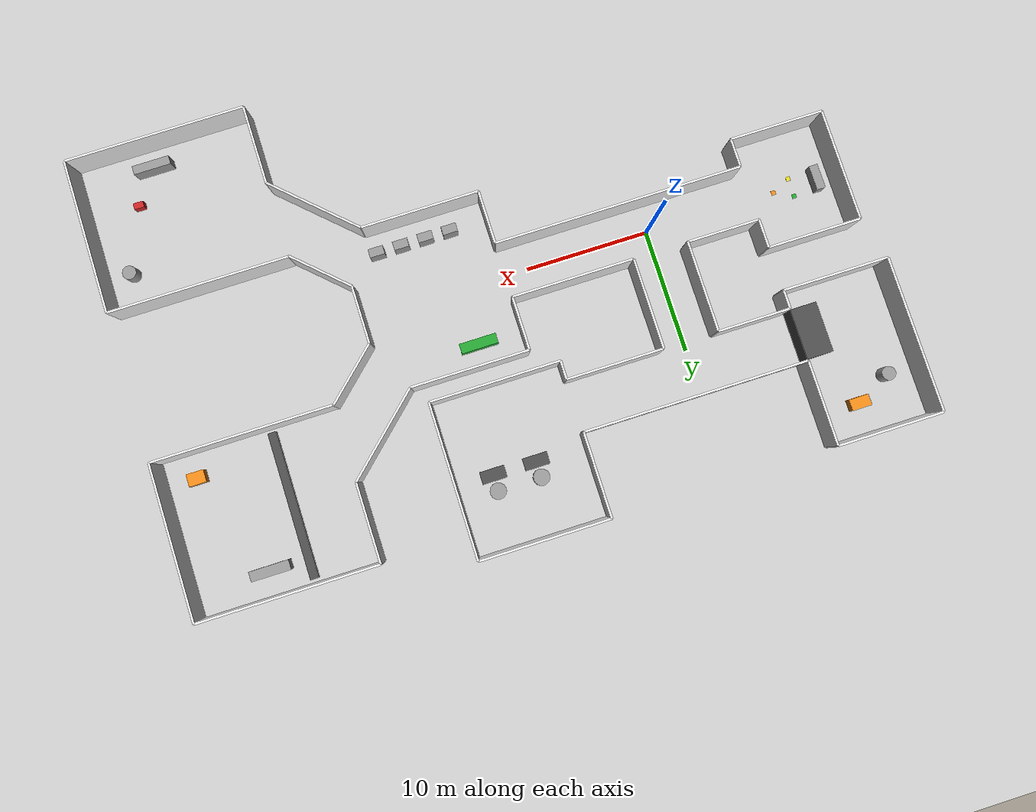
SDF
<?xml version='1.0' encoding='utf-8'?>
<sdf version="1.6">
  <world name="default">
    <physics name="default_physics" default="0" type="ode">
      <max_step_size>0.004</max_step_size>
      <real_time_update_rate>250</real_time_update_rate>
      <real_time_factor>1.0</real_time_factor>
    </physics>
    <scene>
      <ambient>0.62 0.62 0.62 1</ambient>
      <background>0.72 0.76 0.80 1</background>
    </scene>
    <include>
      <uri>model://sun</uri>
    </include>
    <include>
      <uri>model://ground_plane</uri>
    </include>
    <model name="wall_000">
      <static>true</static>
      <pose>-11.750000 4.500000 1.600000 0 0 0.000000</pose>
      <link name="link">
        <collision name="collision">
          <geometry>
            <box>
              <size>7.500000 0.180000 3.200000</size>
            </box>
          </geometry>
        </collision>
        <visual name="visual">
          <geometry>
            <box>
              <size>7.500000 0.180000 3.200000</size>
            </box>
          </geometry>
          <material>
            <script>
              <uri>file://media/materials/scripts/gazebo.material</uri>
              <name>Gazebo/White</name>
            </script>
          </material>
        </visual>
      </link>
    </model>
    <model name="wall_001">
      <static>true</static>
      <pose>-8.000000 3.350000 1.600000 0 0 -1.570796</pose>
      <link name="link">
        <collision name="collision">
          <geometry>
            <box>
              <size>2.300000 0.180000 3.200000</size>
            </box>
          </geometry>
        </collision>
        <visual name="visual">
          <geometry>
            <box>
              <size>2.300000 0.180000 3.200000</size>
            </box>
          </geometry>
          <material>
            <script>
              <uri>file://media/materials/scripts/gazebo.material</uri>
              <name>Gazebo/White</name>
            </script>
          </material>
        </visual>
      </link>
    </model>
    <model name="wall_002">
      <static>true</static>
      <pose>-5.100000 2.200000 1.600000 0 0 0.000000</pose>
      <link name="link">
        <collision name="collision">
          <geometry>
            <box>
              <size>5.800000 0.180000 3.200000</size>
            </box>
          </geometry>
        </collision>
        <visual name="visual">
          <geometry>
            <box>
              <size>5.800000 0.180000 3.200000</size>
            </box>
          </geometry>
          <material>
            <script>
              <uri>file://media/materials/scripts/gazebo.material</uri>
              <name>Gazebo/White</name>
            </script>
          </material>
        </visual>
      </link>
    </model>
    <model name="wall_003">
      <static>true</static>
      <pose>-2.200000 5.850000 1.600000 0 0 1.570796</pose>
      <link name="link">
        <collision name="collision">
          <geometry>
            <box>
              <size>7.300000 0.180000 3.200000</size>
            </box>
          </geometry>
        </collision>
        <visual name="visual">
          <geometry>
            <box>
              <size>7.300000 0.180000 3.200000</size>
            </box>
          </geometry>
          <material>
            <script>
              <uri>file://media/materials/scripts/gazebo.material</uri>
              <name>Gazebo/White</name>
            </script>
          </material>
        </visual>
      </link>
    </model>
    <model name="wall_004">
      <static>true</static>
      <pose>-5.100000 9.500000 1.600000 0 0 3.141593</pose>
      <link name="link">
        <collision name="collision">
          <geometry>
            <box>
              <size>5.800000 0.180000 3.200000</size>
            </box>
          </geometry>
        </collision>
        <visual name="visual">
          <geometry>
            <box>
              <size>5.800000 0.180000 3.200000</size>
            </box>
          </geometry>
          <material>
            <script>
              <uri>file://media/materials/scripts/gazebo.material</uri>
              <name>Gazebo/White</name>
            </script>
          </material>
        </visual>
      </link>
    </model>
    <model name="wall_005">
      <static>true</static>
      <pose>-8.000000 8.750000 1.600000 0 0 -1.570796</pose>
      <link name="link">
        <collision name="collision">
          <geometry>
            <box>
              <size>1.500000 0.180000 3.200000</size>
            </box>
          </geometry>
        </collision>
        <visual name="visual">
          <geometry>
            <box>
              <size>1.500000 0.180000 3.200000</size>
            </box>
          </geometry>
          <material>
            <script>
              <uri>file://media/materials/scripts/gazebo.material</uri>
              <name>Gazebo/White</name>
            </script>
          </material>
        </visual>
      </link>
    </model>
    <model name="wall_006">
      <static>true</static>
      <pose>-12.250000 8.000000 1.600000 0 0 3.141593</pose>
      <link name="link">
        <collision name="collision">
          <geometry>
            <box>
              <size>8.500000 0.180000 3.200000</size>
            </box>
          </geometry>
        </collision>
        <visual name="visual">
          <geometry>
            <box>
              <size>8.500000 0.180000 3.200000</size>
            </box>
          </geometry>
          <material>
            <script>
              <uri>file://media/materials/scripts/gazebo.material</uri>
              <name>Gazebo/White</name>
            </script>
          </material>
        </visual>
      </link>
    </model>
    <model name="wall_007">
      <static>true</static>
      <pose>-16.500000 14.250000 1.600000 0 0 1.570796</pose>
      <link name="link">
        <collision name="collision">
          <geometry>
            <box>
              <size>12.500000 0.180000 3.200000</size>
            </box>
          </geometry>
        </collision>
        <visual name="visual">
          <geometry>
            <box>
              <size>12.500000 0.180000 3.200000</size>
            </box>
          </geometry>
          <material>
            <script>
              <uri>file://media/materials/scripts/gazebo.material</uri>
              <name>Gazebo/White</name>
            </script>
          </material>
        </visual>
      </link>
    </model>
    <model name="wall_008">
      <static>true</static>
      <pose>-12.250000 20.500000 1.600000 0 0 0.000000</pose>
      <link name="link">
        <collision name="collision">
          <geometry>
            <box>
              <size>8.500000 0.180000 3.200000</size>
            </box>
          </geometry>
        </collision>
        <visual name="visual">
          <geometry>
            <box>
              <size>8.500000 0.180000 3.200000</size>
            </box>
          </geometry>
          <material>
            <script>
              <uri>file://media/materials/scripts/gazebo.material</uri>
              <name>Gazebo/White</name>
            </script>
          </material>
        </visual>
      </link>
    </model>
    <model name="wall_009">
      <static>true</static>
      <pose>-8.000000 17.100000 1.600000 0 0 -1.570796</pose>
      <link name="link">
        <collision name="collision">
          <geometry>
            <box>
              <size>6.800000 0.180000 3.200000</size>
            </box>
          </geometry>
        </collision>
        <visual name="visual">
          <geometry>
            <box>
              <size>6.800000 0.180000 3.200000</size>
            </box>
          </geometry>
          <material>
            <script>
              <uri>file://media/materials/scripts/gazebo.material</uri>
              <name>Gazebo/White</name>
            </script>
          </material>
        </visual>
      </link>
    </model>
    <model name="wall_010">
      <static>true</static>
      <pose>1.000000 13.700000 1.600000 0 0 0.000000</pose>
      <link name="link">
        <collision name="collision">
          <geometry>
            <box>
              <size>18.000000 0.180000 3.200000</size>
            </box>
          </geometry>
        </collision>
        <visual name="visual">
          <geometry>
            <box>
              <size>18.000000 0.180000 3.200000</size>
            </box>
          </geometry>
          <material>
            <script>
              <uri>file://media/materials/scripts/gazebo.material</uri>
              <name>Gazebo/White</name>
            </script>
          </material>
        </visual>
      </link>
    </model>
    <model name="wall_011">
      <static>true</static>
      <pose>10.000000 17.100000 1.600000 0 0 1.570796</pose>
      <link name="link">
        <collision name="collision">
          <geometry>
            <box>
              <size>6.800000 0.180000 3.200000</size>
            </box>
          </geometry>
        </collision>
        <visual name="visual">
          <geometry>
            <box>
              <size>6.800000 0.180000 3.200000</size>
            </box>
          </geometry>
          <material>
            <script>
              <uri>file://media/materials/scripts/gazebo.material</uri>
              <name>Gazebo/White</name>
            </script>
          </material>
        </visual>
      </link>
    </model>
    <model name="wall_012">
      <static>true</static>
      <pose>15.250000 20.500000 1.600000 0 0 0.000000</pose>
      <link name="link">
        <collision name="collision">
          <geometry>
            <box>
              <size>10.500000 0.180000 3.200000</size>
            </box>
          </geometry>
        </collision>
        <visual name="visual">
          <geometry>
            <box>
              <size>10.500000 0.180000 3.200000</size>
            </box>
          </geometry>
          <material>
            <script>
              <uri>file://media/materials/scripts/gazebo.material</uri>
              <name>Gazebo/White</name>
            </script>
          </material>
        </visual>
      </link>
    </model>
    <model name="wall_013">
      <static>true</static>
      <pose>20.500000 14.250000 1.600000 0 0 -1.570796</pose>
      <link name="link">
        <collision name="collision">
          <geometry>
            <box>
              <size>12.500000 0.180000 3.200000</size>
            </box>
          </geometry>
        </collision>
        <visual name="visual">
          <geometry>
            <box>
              <size>12.500000 0.180000 3.200000</size>
            </box>
          </geometry>
          <material>
            <script>
              <uri>file://media/materials/scripts/gazebo.material</uri>
              <name>Gazebo/White</name>
            </script>
          </material>
        </visual>
      </link>
    </model>
    <model name="wall_014">
      <static>true</static>
      <pose>15.250000 8.000000 1.600000 0 0 3.141593</pose>
      <link name="link">
        <collision name="collision">
          <geometry>
            <box>
              <size>10.500000 0.180000 3.200000</size>
            </box>
          </geometry>
        </collision>
        <visual name="visual">
          <geometry>
            <box>
              <size>10.500000 0.180000 3.200000</size>
            </box>
          </geometry>
          <material>
            <script>
              <uri>file://media/materials/scripts/gazebo.material</uri>
              <name>Gazebo/White</name>
            </script>
          </material>
        </visual>
      </link>
    </model>
    <model name="wall_015">
      <static>true</static>
      <pose>10.000000 8.750000 1.600000 0 0 1.570796</pose>
      <link name="link">
        <collision name="collision">
          <geometry>
            <box>
              <size>1.500000 0.180000 3.200000</size>
            </box>
          </geometry>
        </collision>
        <visual name="visual">
          <geometry>
            <box>
              <size>1.500000 0.180000 3.200000</size>
            </box>
          </geometry>
          <material>
            <script>
              <uri>file://media/materials/scripts/gazebo.material</uri>
              <name>Gazebo/White</name>
            </script>
          </material>
        </visual>
      </link>
    </model>
    <model name="wall_016">
      <static>true</static>
      <pose>6.100000 9.500000 1.600000 0 0 3.141593</pose>
      <link name="link">
        <collision name="collision">
          <geometry>
            <box>
              <size>7.800000 0.180000 3.200000</size>
            </box>
          </geometry>
        </collision>
        <visual name="visual">
          <geometry>
            <box>
              <size>7.800000 0.180000 3.200000</size>
            </box>
          </geometry>
          <material>
            <script>
              <uri>file://media/materials/scripts/gazebo.material</uri>
              <name>Gazebo/White</name>
            </script>
          </material>
        </visual>
      </link>
    </model>
    <model name="wall_017">
      <static>true</static>
      <pose>2.200000 5.850000 1.600000 0 0 -1.570796</pose>
      <link name="link">
        <collision name="collision">
          <geometry>
            <box>
              <size>7.300000 0.180000 3.200000</size>
            </box>
          </geometry>
        </collision>
        <visual name="visual">
          <geometry>
            <box>
              <size>7.300000 0.180000 3.200000</size>
            </box>
          </geometry>
          <material>
            <script>
              <uri>file://media/materials/scripts/gazebo.material</uri>
              <name>Gazebo/White</name>
            </script>
          </material>
        </visual>
      </link>
    </model>
    <model name="wall_018">
      <static>true</static>
      <pose>7.100000 2.200000 1.600000 0 0 0.000000</pose>
      <link name="link">
        <collision name="collision">
          <geometry>
            <box>
              <size>9.800000 0.180000 3.200000</size>
            </box>
          </geometry>
        </collision>
        <visual name="visual">
          <geometry>
            <box>
              <size>9.800000 0.180000 3.200000</size>
            </box>
          </geometry>
          <material>
            <script>
              <uri>file://media/materials/scripts/gazebo.material</uri>
              <name>Gazebo/White</name>
            </script>
          </material>
        </visual>
      </link>
    </model>
    <model name="wall_019">
      <static>true</static>
      <pose>12.000000 4.350000 1.600000 0 0 1.570796</pose>
      <link name="link">
        <collision name="collision">
          <geometry>
            <box>
              <size>4.300000 0.180000 3.200000</size>
            </box>
          </geometry>
        </collision>
        <visual name="visual">
          <geometry>
            <box>
              <size>4.300000 0.180000 3.200000</size>
            </box>
          </geometry>
          <material>
            <script>
              <uri>file://media/materials/scripts/gazebo.material</uri>
              <name>Gazebo/White</name>
            </script>
          </material>
        </visual>
      </link>
    </model>
    <model name="wall_020">
      <static>true</static>
      <pose>16.758341 6.500000 1.600000 0 0 0.000000</pose>
      <link name="link">
        <collision name="collision">
          <geometry>
            <box>
              <size>9.516682 0.180000 3.200000</size>
            </box>
          </geometry>
        </collision>
        <visual name="visual">
          <geometry>
            <box>
              <size>9.516682 0.180000 3.200000</size>
            </box>
          </geometry>
          <material>
            <script>
              <uri>file://media/materials/scripts/gazebo.material</uri>
              <name>Gazebo/White</name>
            </script>
          </material>
        </visual>
      </link>
    </model>
    <model name="wall_021">
      <static>true</static>
      <pose>24.506006 9.302491 1.600000 0 0 0.753151</pose>
      <link name="link">
        <collision name="collision">
          <geometry>
            <box>
              <size>8.195123 0.180000 3.200000</size>
            </box>
          </geometry>
        </collision>
        <visual name="visual">
          <geometry>
            <box>
              <size>8.195123 0.180000 3.200000</size>
            </box>
          </geometry>
          <material>
            <script>
              <uri>file://media/materials/scripts/gazebo.material</uri>
              <name>Gazebo/White</name>
            </script>
          </material>
        </visual>
      </link>
    </model>
    <model name="wall_022">
      <static>true</static>
      <pose>27.497665 12.102491 1.600000 0 0 -0.817645</pose>
      <link name="link">
        <collision name="collision">
          <geometry>
            <box>
              <size>0.006829 0.180000 3.200000</size>
            </box>
          </geometry>
        </collision>
        <visual name="visual">
          <geometry>
            <box>
              <size>0.006829 0.180000 3.200000</size>
            </box>
          </geometry>
          <material>
            <script>
              <uri>file://media/materials/scripts/gazebo.material</uri>
              <name>Gazebo/White</name>
            </script>
          </material>
        </visual>
      </link>
    </model>
    <model name="wall_023">
      <static>true</static>
      <pose>27.500000 15.300000 1.600000 0 0 1.570796</pose>
      <link name="link">
        <collision name="collision">
          <geometry>
            <box>
              <size>6.400000 0.180000 3.200000</size>
            </box>
          </geometry>
        </collision>
        <visual name="visual">
          <geometry>
            <box>
              <size>6.400000 0.180000 3.200000</size>
            </box>
          </geometry>
          <material>
            <script>
              <uri>file://media/materials/scripts/gazebo.material</uri>
              <name>Gazebo/White</name>
            </script>
          </material>
        </visual>
      </link>
    </model>
    <model name="wall_024">
      <static>true</static>
      <pose>34.750000 18.500000 1.600000 0 0 0.000000</pose>
      <link name="link">
        <collision name="collision">
          <geometry>
            <box>
              <size>14.500000 0.180000 3.200000</size>
            </box>
          </geometry>
        </collision>
        <visual name="visual">
          <geometry>
            <box>
              <size>14.500000 0.180000 3.200000</size>
            </box>
          </geometry>
          <material>
            <script>
              <uri>file://media/materials/scripts/gazebo.material</uri>
              <name>Gazebo/White</name>
            </script>
          </material>
        </visual>
      </link>
    </model>
    <model name="wall_025">
      <static>true</static>
      <pose>42.000000 12.250000 1.600000 0 0 -1.570796</pose>
      <link name="link">
        <collision name="collision">
          <geometry>
            <box>
              <size>12.500000 0.180000 3.200000</size>
            </box>
          </geometry>
        </collision>
        <visual name="visual">
          <geometry>
            <box>
              <size>12.500000 0.180000 3.200000</size>
            </box>
          </geometry>
          <material>
            <script>
              <uri>file://media/materials/scripts/gazebo.material</uri>
              <name>Gazebo/White</name>
            </script>
          </material>
        </visual>
      </link>
    </model>
    <model name="wall_026">
      <static>true</static>
      <pose>34.750000 6.000000 1.600000 0 0 3.141593</pose>
      <link name="link">
        <collision name="collision">
          <geometry>
            <box>
              <size>14.500000 0.180000 3.200000</size>
            </box>
          </geometry>
        </collision>
        <visual name="visual">
          <geometry>
            <box>
              <size>14.500000 0.180000 3.200000</size>
            </box>
          </geometry>
          <material>
            <script>
              <uri>file://media/materials/scripts/gazebo.material</uri>
              <name>Gazebo/White</name>
            </script>
          </material>
        </visual>
      </link>
    </model>
    <model name="wall_027">
      <static>true</static>
      <pose>27.500000 6.039070 1.600000 0 0 1.570796</pose>
      <link name="link">
        <collision name="collision">
          <geometry>
            <box>
              <size>0.078140 0.180000 3.200000</size>
            </box>
          </geometry>
        </collision>
        <visual name="visual">
          <geometry>
            <box>
              <size>0.078140 0.180000 3.200000</size>
            </box>
          </geometry>
          <material>
            <script>
              <uri>file://media/materials/scripts/gazebo.material</uri>
              <name>Gazebo/White</name>
            </script>
          </material>
        </visual>
      </link>
    </model>
    <model name="wall_028">
      <static>true</static>
      <pose>25.500000 4.203140 1.600000 0 0 -2.388441</pose>
      <link name="link">
        <collision name="collision">
          <geometry>
            <box>
              <size>5.482928 0.180000 3.200000</size>
            </box>
          </geometry>
        </collision>
        <visual name="visual">
          <geometry>
            <box>
              <size>5.482928 0.180000 3.200000</size>
            </box>
          </geometry>
          <material>
            <script>
              <uri>file://media/materials/scripts/gazebo.material</uri>
              <name>Gazebo/White</name>
            </script>
          </material>
        </visual>
      </link>
    </model>
    <model name="wall_029">
      <static>true</static>
      <pose>23.500000 0.000000 1.600000 0 0 -1.570796</pose>
      <link name="link">
        <collision name="collision">
          <geometry>
            <box>
              <size>4.656279 0.180000 3.200000</size>
            </box>
          </geometry>
        </collision>
        <visual name="visual">
          <geometry>
            <box>
              <size>4.656279 0.180000 3.200000</size>
            </box>
          </geometry>
          <material>
            <script>
              <uri>file://media/materials/scripts/gazebo.material</uri>
              <name>Gazebo/White</name>
            </script>
          </material>
        </visual>
      </link>
    </model>
    <model name="wall_030">
      <static>true</static>
      <pose>25.500000 -4.203140 1.600000 0 0 -0.753151</pose>
      <link name="link">
        <collision name="collision">
          <geometry>
            <box>
              <size>5.482928 0.180000 3.200000</size>
            </box>
          </geometry>
        </collision>
        <visual name="visual">
          <geometry>
            <box>
              <size>5.482928 0.180000 3.200000</size>
            </box>
          </geometry>
          <material>
            <script>
              <uri>file://media/materials/scripts/gazebo.material</uri>
              <name>Gazebo/White</name>
            </script>
          </material>
        </visual>
      </link>
    </model>
    <model name="wall_031">
      <static>true</static>
      <pose>27.500000 -6.039070 1.600000 0 0 1.570796</pose>
      <link name="link">
        <collision name="collision">
          <geometry>
            <box>
              <size>0.078140 0.180000 3.200000</size>
            </box>
          </geometry>
        </collision>
        <visual name="visual">
          <geometry>
            <box>
              <size>0.078140 0.180000 3.200000</size>
            </box>
          </geometry>
          <material>
            <script>
              <uri>file://media/materials/scripts/gazebo.material</uri>
              <name>Gazebo/White</name>
            </script>
          </material>
        </visual>
      </link>
    </model>
    <model name="wall_032">
      <static>true</static>
      <pose>34.750000 -6.000000 1.600000 0 0 0.000000</pose>
      <link name="link">
        <collision name="collision">
          <geometry>
            <box>
              <size>14.500000 0.180000 3.200000</size>
            </box>
          </geometry>
        </collision>
        <visual name="visual">
          <geometry>
            <box>
              <size>14.500000 0.180000 3.200000</size>
            </box>
          </geometry>
          <material>
            <script>
              <uri>file://media/materials/scripts/gazebo.material</uri>
              <name>Gazebo/White</name>
            </script>
          </material>
        </visual>
      </link>
    </model>
    <model name="wall_033">
      <static>true</static>
      <pose>42.000000 -12.250000 1.600000 0 0 -1.570796</pose>
      <link name="link">
        <collision name="collision">
          <geometry>
            <box>
              <size>12.500000 0.180000 3.200000</size>
            </box>
          </geometry>
        </collision>
        <visual name="visual">
          <geometry>
            <box>
              <size>12.500000 0.180000 3.200000</size>
            </box>
          </geometry>
          <material>
            <script>
              <uri>file://media/materials/scripts/gazebo.material</uri>
              <name>Gazebo/White</name>
            </script>
          </material>
        </visual>
      </link>
    </model>
    <model name="wall_034">
      <static>true</static>
      <pose>34.750000 -18.500000 1.600000 0 0 3.141593</pose>
      <link name="link">
        <collision name="collision">
          <geometry>
            <box>
              <size>14.500000 0.180000 3.200000</size>
            </box>
          </geometry>
        </collision>
        <visual name="visual">
          <geometry>
            <box>
              <size>14.500000 0.180000 3.200000</size>
            </box>
          </geometry>
          <material>
            <script>
              <uri>file://media/materials/scripts/gazebo.material</uri>
              <name>Gazebo/White</name>
            </script>
          </material>
        </visual>
      </link>
    </model>
    <model name="wall_035">
      <static>true</static>
      <pose>27.500000 -15.300000 1.600000 0 0 1.570796</pose>
      <link name="link">
        <collision name="collision">
          <geometry>
            <box>
              <size>6.400000 0.180000 3.200000</size>
            </box>
          </geometry>
        </collision>
        <visual name="visual">
          <geometry>
            <box>
              <size>6.400000 0.180000 3.200000</size>
            </box>
          </geometry>
          <material>
            <script>
              <uri>file://media/materials/scripts/gazebo.material</uri>
              <name>Gazebo/White</name>
            </script>
          </material>
        </visual>
      </link>
    </model>
    <model name="wall_036">
      <static>true</static>
      <pose>27.497665 -12.102491 1.600000 0 0 -2.323948</pose>
      <link name="link">
        <collision name="collision">
          <geometry>
            <box>
              <size>0.006829 0.180000 3.200000</size>
            </box>
          </geometry>
        </collision>
        <visual name="visual">
          <geometry>
            <box>
              <size>0.006829 0.180000 3.200000</size>
            </box>
          </geometry>
          <material>
            <script>
              <uri>file://media/materials/scripts/gazebo.material</uri>
              <name>Gazebo/White</name>
            </script>
          </material>
        </visual>
      </link>
    </model>
    <model name="wall_037">
      <static>true</static>
      <pose>24.506006 -9.302491 1.600000 0 0 2.388441</pose>
      <link name="link">
        <collision name="collision">
          <geometry>
            <box>
              <size>8.195123 0.180000 3.200000</size>
            </box>
          </geometry>
        </collision>
        <visual name="visual">
          <geometry>
            <box>
              <size>8.195123 0.180000 3.200000</size>
            </box>
          </geometry>
          <material>
            <script>
              <uri>file://media/materials/scripts/gazebo.material</uri>
              <name>Gazebo/White</name>
            </script>
          </material>
        </visual>
      </link>
    </model>
    <model name="wall_038">
      <static>true</static>
      <pose>16.758341 -6.500000 1.600000 0 0 3.141593</pose>
      <link name="link">
        <collision name="collision">
          <geometry>
            <box>
              <size>9.516682 0.180000 3.200000</size>
            </box>
          </geometry>
        </collision>
        <visual name="visual">
          <geometry>
            <box>
              <size>9.516682 0.180000 3.200000</size>
            </box>
          </geometry>
          <material>
            <script>
              <uri>file://media/materials/scripts/gazebo.material</uri>
              <name>Gazebo/White</name>
            </script>
          </material>
        </visual>
      </link>
    </model>
    <model name="wall_039">
      <static>true</static>
      <pose>12.000000 -4.350000 1.600000 0 0 1.570796</pose>
      <link name="link">
        <collision name="collision">
          <geometry>
            <box>
              <size>4.300000 0.180000 3.200000</size>
            </box>
          </geometry>
        </collision>
        <visual name="visual">
          <geometry>
            <box>
              <size>4.300000 0.180000 3.200000</size>
            </box>
          </geometry>
          <material>
            <script>
              <uri>file://media/materials/scripts/gazebo.material</uri>
              <name>Gazebo/White</name>
            </script>
          </material>
        </visual>
      </link>
    </model>
    <model name="wall_040">
      <static>true</static>
      <pose>2.000000 -2.200000 1.600000 0 0 3.141593</pose>
      <link name="link">
        <collision name="collision">
          <geometry>
            <box>
              <size>20.000000 0.180000 3.200000</size>
            </box>
          </geometry>
        </collision>
        <visual name="visual">
          <geometry>
            <box>
              <size>20.000000 0.180000 3.200000</size>
            </box>
          </geometry>
          <material>
            <script>
              <uri>file://media/materials/scripts/gazebo.material</uri>
              <name>Gazebo/White</name>
            </script>
          </material>
        </visual>
      </link>
    </model>
    <model name="wall_041">
      <static>true</static>
      <pose>-8.000000 -3.350000 1.600000 0 0 -1.570796</pose>
      <link name="link">
        <collision name="collision">
          <geometry>
            <box>
              <size>2.300000 0.180000 3.200000</size>
            </box>
          </geometry>
        </collision>
        <visual name="visual">
          <geometry>
            <box>
              <size>2.300000 0.180000 3.200000</size>
            </box>
          </geometry>
          <material>
            <script>
              <uri>file://media/materials/scripts/gazebo.material</uri>
              <name>Gazebo/White</name>
            </script>
          </material>
        </visual>
      </link>
    </model>
    <model name="wall_042">
      <static>true</static>
      <pose>-11.750000 -4.500000 1.600000 0 0 3.141593</pose>
      <link name="link">
        <collision name="collision">
          <geometry>
            <box>
              <size>7.500000 0.180000 3.200000</size>
            </box>
          </geometry>
        </collision>
        <visual name="visual">
          <geometry>
            <box>
              <size>7.500000 0.180000 3.200000</size>
            </box>
          </geometry>
          <material>
            <script>
              <uri>file://media/materials/scripts/gazebo.material</uri>
              <name>Gazebo/White</name>
            </script>
          </material>
        </visual>
      </link>
    </model>
    <model name="wall_043">
      <static>true</static>
      <pose>-15.500000 0.000000 1.600000 0 0 1.570796</pose>
      <link name="link">
        <collision name="collision">
          <geometry>
            <box>
              <size>9.000000 0.180000 3.200000</size>
            </box>
          </geometry>
        </collision>
        <visual name="visual">
          <geometry>
            <box>
              <size>9.000000 0.180000 3.200000</size>
            </box>
          </geometry>
          <material>
            <script>
              <uri>file://media/materials/scripts/gazebo.material</uri>
              <name>Gazebo/White</name>
            </script>
          </material>
        </visual>
      </link>
    </model>
    <model name="entry_console">
      <static>true</static>
      <pose>-14.200000 0.000000 0.550000 0 0 0.000000</pose>
      <link name="link">
        <collision name="collision">
          <geometry>
            <box>
              <size>0.700000 2.000000 1.100000</size>
            </box>
          </geometry>
        </collision>
        <visual name="visual">
          <geometry>
            <box>
              <size>0.700000 2.000000 1.100000</size>
            </box>
          </geometry>
          <material>
            <script>
              <uri>file://media/materials/scripts/gazebo.material</uri>
              <name>Gazebo/Grey</name>
            </script>
          </material>
        </visual>
      </link>
    </model>
    <model name="A_valve_1">
      <static>true</static>
      <pose>-14.200000 16.500000 0.700000 0 0 0</pose>
      <link name="link">
        <collision name="collision">
          <geometry>
            <cylinder>
              <radius>0.550000</radius>
              <length>1.400000</length>
            </cylinder>
          </geometry>
        </collision>
        <visual name="visual">
          <geometry>
            <cylinder>
              <radius>0.550000</radius>
              <length>1.400000</length>
            </cylinder>
          </geometry>
          <material>
            <script>
              <uri>file://media/materials/scripts/gazebo.material</uri>
              <name>Gazebo/Grey</name>
            </script>
          </material>
        </visual>
      </link>
    </model>
    <model name="A_tool_crate">
      <static>true</static>
      <pose>-11.500000 18.000000 0.450000 0 0 0.000000</pose>
      <link name="link">
        <collision name="collision">
          <geometry>
            <box>
              <size>1.600000 0.900000 0.900000</size>
            </box>
          </geometry>
        </collision>
        <visual name="visual">
          <geometry>
            <box>
              <size>1.600000 0.900000 0.900000</size>
            </box>
          </geometry>
          <material>
            <script>
              <uri>file://media/materials/scripts/gazebo.material</uri>
              <name>Gazebo/Orange</name>
            </script>
          </material>
        </visual>
      </link>
    </model>
    <model name="B_pump_1">
      <static>true</static>
      <pose>14.000000 16.000000 0.800000 0 0 0</pose>
      <link name="link">
        <collision name="collision">
          <geometry>
            <cylinder>
              <radius>0.650000</radius>
              <length>1.600000</length>
            </cylinder>
          </geometry>
        </collision>
        <visual name="visual">
          <geometry>
            <cylinder>
              <radius>0.650000</radius>
              <length>1.600000</length>
            </cylinder>
          </geometry>
          <material>
            <script>
              <uri>file://media/materials/scripts/gazebo.material</uri>
              <name>Gazebo/Grey</name>
            </script>
          </material>
        </visual>
      </link>
    </model>
    <model name="B_pump_2">
      <static>true</static>
      <pose>17.500000 16.000000 0.800000 0 0 0</pose>
      <link name="link">
        <collision name="collision">
          <geometry>
            <cylinder>
              <radius>0.650000</radius>
              <length>1.600000</length>
            </cylinder>
          </geometry>
        </collision>
        <visual name="visual">
          <geometry>
            <cylinder>
              <radius>0.650000</radius>
              <length>1.600000</length>
            </cylinder>
          </geometry>
          <material>
            <script>
              <uri>file://media/materials/scripts/gazebo.material</uri>
              <name>Gazebo/Grey</name>
            </script>
          </material>
        </visual>
      </link>
    </model>
    <model name="B_base_1">
      <static>true</static>
      <pose>14.000000 14.700000 0.250000 0 0 0.000000</pose>
      <link name="link">
        <collision name="collision">
          <geometry>
            <box>
              <size>2.000000 1.000000 0.500000</size>
            </box>
          </geometry>
        </collision>
        <visual name="visual">
          <geometry>
            <box>
              <size>2.000000 1.000000 0.500000</size>
            </box>
          </geometry>
          <material>
            <script>
              <uri>file://media/materials/scripts/gazebo.material</uri>
              <name>Gazebo/DarkGrey</name>
            </script>
          </material>
        </visual>
      </link>
    </model>
    <model name="B_base_2">
      <static>true</static>
      <pose>17.500000 14.700000 0.250000 0 0 0.000000</pose>
      <link name="link">
        <collision name="collision">
          <geometry>
            <box>
              <size>2.000000 1.000000 0.500000</size>
            </box>
          </geometry>
        </collision>
        <visual name="visual">
          <geometry>
            <box>
              <size>2.000000 1.000000 0.500000</size>
            </box>
          </geometry>
          <material>
            <script>
              <uri>file://media/materials/scripts/gazebo.material</uri>
              <name>Gazebo/DarkGrey</name>
            </script>
          </material>
        </visual>
      </link>
    </model>
    <model name="C_cabinet_0">
      <static>true</static>
      <pose>15.000000 -4.700000 0.800000 0 0 0.000000</pose>
      <link name="link">
        <collision name="collision">
          <geometry>
            <box>
              <size>1.200000 0.700000 1.600000</size>
            </box>
          </geometry>
        </collision>
        <visual name="visual">
          <geometry>
            <box>
              <size>1.200000 0.700000 1.600000</size>
            </box>
          </geometry>
          <material>
            <script>
              <uri>file://media/materials/scripts/gazebo.material</uri>
              <name>Gazebo/Grey</name>
            </script>
          </material>
        </visual>
      </link>
    </model>
    <model name="C_cabinet_1">
      <static>true</static>
      <pose>17.000000 -4.700000 0.800000 0 0 0.000000</pose>
      <link name="link">
        <collision name="collision">
          <geometry>
            <box>
              <size>1.200000 0.700000 1.600000</size>
            </box>
          </geometry>
        </collision>
        <visual name="visual">
          <geometry>
            <box>
              <size>1.200000 0.700000 1.600000</size>
            </box>
          </geometry>
          <material>
            <script>
              <uri>file://media/materials/scripts/gazebo.material</uri>
              <name>Gazebo/Grey</name>
            </script>
          </material>
        </visual>
      </link>
    </model>
    <model name="C_cabinet_2">
      <static>true</static>
      <pose>19.000000 -4.700000 0.800000 0 0 0.000000</pose>
      <link name="link">
        <collision name="collision">
          <geometry>
            <box>
              <size>1.200000 0.700000 1.600000</size>
            </box>
          </geometry>
        </collision>
        <visual name="visual">
          <geometry>
            <box>
              <size>1.200000 0.700000 1.600000</size>
            </box>
          </geometry>
          <material>
            <script>
              <uri>file://media/materials/scripts/gazebo.material</uri>
              <name>Gazebo/Grey</name>
            </script>
          </material>
        </visual>
      </link>
    </model>
    <model name="C_cabinet_3">
      <static>true</static>
      <pose>21.000000 -4.700000 0.800000 0 0 0.000000</pose>
      <link name="link">
        <collision name="collision">
          <geometry>
            <box>
              <size>1.200000 0.700000 1.600000</size>
            </box>
          </geometry>
        </collision>
        <visual name="visual">
          <geometry>
            <box>
              <size>1.200000 0.700000 1.600000</size>
            </box>
          </geometry>
          <material>
            <script>
              <uri>file://media/materials/scripts/gazebo.material</uri>
              <name>Gazebo/Grey</name>
            </script>
          </material>
        </visual>
      </link>
    </model>
    <model name="C_workbench">
      <static>true</static>
      <pose>15.500000 4.600000 0.550000 0 0 0.000000</pose>
      <link name="link">
        <collision name="collision">
          <geometry>
            <box>
              <size>3.000000 0.800000 1.100000</size>
            </box>
          </geometry>
        </collision>
        <visual name="visual">
          <geometry>
            <box>
              <size>3.000000 0.800000 1.100000</size>
            </box>
          </geometry>
          <material>
            <script>
              <uri>file://media/materials/scripts/gazebo.material</uri>
              <name>Gazebo/Green</name>
            </script>
          </material>
        </visual>
      </link>
    </model>
    <model name="D_bench">
      <static>true</static>
      <pose>36.000000 16.500000 0.550000 0 0 0.000000</pose>
      <link name="link">
        <collision name="collision">
          <geometry>
            <box>
              <size>3.200000 0.800000 1.100000</size>
            </box>
          </geometry>
        </collision>
        <visual name="visual">
          <geometry>
            <box>
              <size>3.200000 0.800000 1.100000</size>
            </box>
          </geometry>
          <material>
            <script>
              <uri>file://media/materials/scripts/gazebo.material</uri>
              <name>Gazebo/Grey</name>
            </script>
          </material>
        </visual>
      </link>
    </model>
    <model name="D_crate">
      <static>true</static>
      <pose>39.500000 8.000000 0.450000 0 0 0.000000</pose>
      <link name="link">
        <collision name="collision">
          <geometry>
            <box>
              <size>1.400000 1.000000 0.900000</size>
            </box>
          </geometry>
        </collision>
        <visual name="visual">
          <geometry>
            <box>
              <size>1.400000 1.000000 0.900000</size>
            </box>
          </geometry>
          <material>
            <script>
              <uri>file://media/materials/scripts/gazebo.material</uri>
              <name>Gazebo/Orange</name>
            </script>
          </material>
        </visual>
      </link>
    </model>
    <model name="E_shelf">
      <static>true</static>
      <pose>36.000000 -16.800000 0.750000 0 0 0.000000</pose>
      <link name="link">
        <collision name="collision">
          <geometry>
            <box>
              <size>3.000000 0.700000 1.500000</size>
            </box>
          </geometry>
        </collision>
        <visual name="visual">
          <geometry>
            <box>
              <size>3.000000 0.700000 1.500000</size>
            </box>
          </geometry>
          <material>
            <script>
              <uri>file://media/materials/scripts/gazebo.material</uri>
              <name>Gazebo/Grey</name>
            </script>
          </material>
        </visual>
      </link>
    </model>
    <model name="E_tank">
      <static>true</static>
      <pose>40.000000 -9.000000 0.700000 0 0 0</pose>
      <link name="link">
        <collision name="collision">
          <geometry>
            <cylinder>
              <radius>0.550000</radius>
              <length>1.400000</length>
            </cylinder>
          </geometry>
        </collision>
        <visual name="visual">
          <geometry>
            <cylinder>
              <radius>0.550000</radius>
              <length>1.400000</length>
            </cylinder>
          </geometry>
          <material>
            <script>
              <uri>file://media/materials/scripts/gazebo.material</uri>
              <name>Gazebo/Grey</name>
            </script>
          </material>
        </visual>
      </link>
    </model>
    <model name="A_low_clearance_header">
      <static>true</static>
      <pose>-9.000000 11.600000 2.140000 0 0 0.000000</pose>
      <link name="link">
        <collision name="collision">
          <geometry>
            <box>
              <size>2.100000 4.000000 2.120000</size>
            </box>
          </geometry>
        </collision>
        <visual name="visual">
          <geometry>
            <box>
              <size>2.100000 4.000000 2.120000</size>
            </box>
          </geometry>
          <material>
            <script>
              <uri>file://media/materials/scripts/gazebo.material</uri>
              <name>Gazebo/DarkGrey</name>
            </script>
          </material>
        </visual>
      </link>
    </model>
    <model name="D_low_ground_barrier">
      <static>true</static>
      <pose>33.000000 12.250000 0.325000 0 0 0.000000</pose>
      <link name="link">
        <collision name="collision">
          <geometry>
            <box>
              <size>0.650000 11.800000 0.650000</size>
            </box>
          </geometry>
        </collision>
        <visual name="visual">
          <geometry>
            <box>
              <size>0.650000 11.800000 0.650000</size>
            </box>
          </geometry>
          <material>
            <script>
              <uri>file://media/materials/scripts/gazebo.material</uri>
              <name>Gazebo/DarkGrey</name>
            </script>
          </material>
        </visual>
      </link>
    </model>
    <model name="robot_start_1">
      <static>true</static>
      <pose>-12.300000 -0.750000 0.015000 0 0 0.000000</pose>
      <link name="link">
        <visual name="visual">
          <geometry>
            <box>
              <size>0.350000 0.350000 0.030000</size>
            </box>
          </geometry>
          <material>
            <script>
              <uri>file://media/materials/scripts/gazebo.material</uri>
              <name>Gazebo/Yellow</name>
            </script>
          </material>
        </visual>
      </link>
    </model>
    <model name="robot_start_2">
      <static>true</static>
      <pose>-12.300000 0.750000 0.015000 0 0 0.000000</pose>
      <link name="link">
        <visual name="visual">
          <geometry>
            <box>
              <size>0.350000 0.350000 0.030000</size>
            </box>
          </geometry>
          <material>
            <script>
              <uri>file://media/materials/scripts/gazebo.material</uri>
              <name>Gazebo/Green</name>
            </script>
          </material>
        </visual>
      </link>
    </model>
    <model name="robot_start_3">
      <static>true</static>
      <pose>-10.800000 0.000000 0.015000 0 0 0.000000</pose>
      <link name="link">
        <visual name="visual">
          <geometry>
            <box>
              <size>0.350000 0.350000 0.030000</size>
            </box>
          </geometry>
          <material>
            <script>
              <uri>file://media/materials/scripts/gazebo.material</uri>
              <name>Gazebo/Orange</name>
            </script>
          </material>
        </visual>
      </link>
    </model>
    <model name="red_target_case">
      <static>true</static>
      <pose>38.000000 -14.200000 0.400000 0 0 0.000000</pose>
      <link name="link">
        <collision name="collision">
          <geometry>
            <box>
              <size>0.800000 0.500000 0.800000</size>
            </box>
          </geometry>
        </collision>
        <visual name="visual">
          <geometry>
            <box>
              <size>0.800000 0.500000 0.800000</size>
            </box>
          </geometry>
          <material>
            <script>
              <uri>file://media/materials/scripts/gazebo.material</uri>
              <name>Gazebo/Red</name>
            </script>
          </material>
        </visual>
      </link>
    </model>
    <model name="red_target_cross_vertical">
      <static>true</static>
      <pose>38.000000 -14.456000 0.430000 0 0 0.000000</pose>
      <link name="link">
        <visual name="visual">
          <geometry>
            <box>
              <size>0.100000 0.025000 0.420000</size>
            </box>
          </geometry>
          <material>
            <script>
              <uri>file://media/materials/scripts/gazebo.material</uri>
              <name>Gazebo/White</name>
            </script>
          </material>
        </visual>
      </link>
    </model>
    <model name="red_target_cross_horizontal">
      <static>true</static>
      <pose>38.000000 -14.456000 0.430000 0 0 0.000000</pose>
      <link name="link">
        <visual name="visual">
          <geometry>
            <box>
              <size>0.340000 0.025000 0.100000</size>
            </box>
          </geometry>
          <material>
            <script>
              <uri>file://media/materials/scripts/gazebo.material</uri>
              <name>Gazebo/White</name>
            </script>
          </material>
        </visual>
      </link>
    </model>
    <gui fullscreen="0">
      <camera name="user_camera">
        <pose>12 0 76 0 1.10 1.5708</pose>
      </camera>
    </gui>
  </world>
</sdf>
